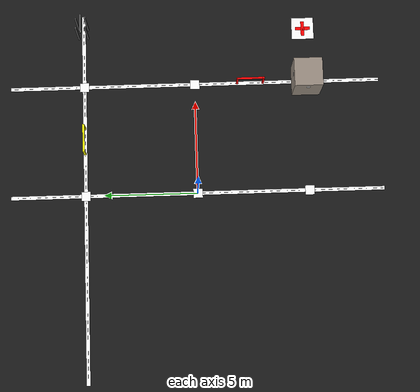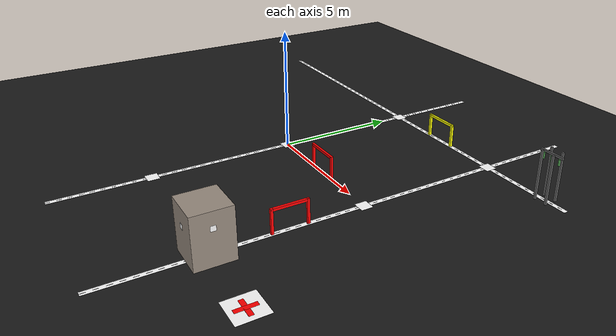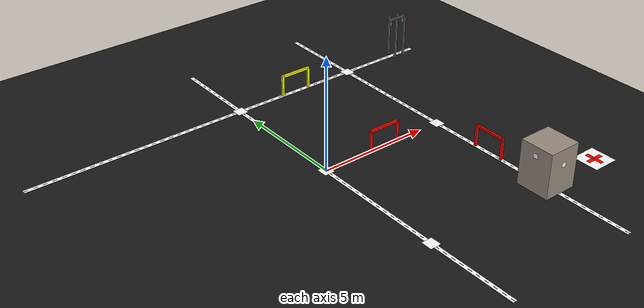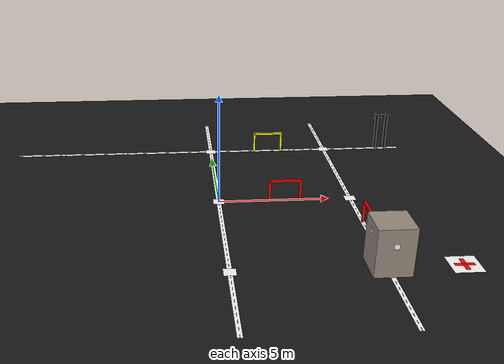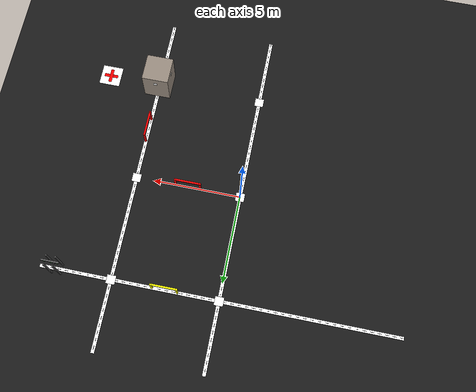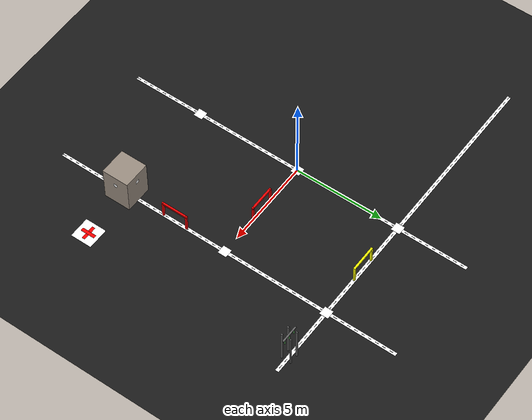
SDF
<sdf version="1.7">
 <world name="fira_arena">
  <model name="ground_plane">
   <static>true</static>
   <link name="link">
    <collision name="collision">
     <geometry><plane><normal>0 0 1</normal><size>30 30</size></plane></geometry>
    </collision>
    <visual name="visual">
     <geometry><plane><normal>0 0 1</normal><size>30 30</size></plane></geometry>
     <material>
      <ambient>0.1 0.1 0.1 1</ambient>
      <diffuse>0.1 0.1 0.1 1</diffuse>
      <specular>0.1 0.1 0.1 1</specular>
     </material>
    </visual>
   </link>
  </model>
  <model name="street_h_top">
   <static>true</static>
   <pose>0 6 0.001 0 0 0</pose>
   <link name="link">
    <visual name="road">
     <geometry><box><size>20.0 0.2 0.002</size></box></geometry>
     <material><ambient>1 1 1 1</ambient><diffuse>1 1 1 1</diffuse></material>
    </visual>
    <visual name="l0">
     <pose>-9.90 0 0.001 0 0 0</pose>
     <geometry><box><size>0.2 0.02 0.001</size></box></geometry>
     <material><ambient>0 0 0 1</ambient><diffuse>0 0 0 1</diffuse></material>
    </visual>
    <visual name="l1">
     <pose>-9.50 0 0.001 0 0 0</pose>
     <geometry><box><size>0.2 0.02 0.001</size></box></geometry>
     <material><ambient>0 0 0 1</ambient><diffuse>0 0 0 1</diffuse></material>
    </visual>
    <visual name="l2">
     <pose>-9.10 0 0.001 0 0 0</pose>
     <geometry><box><size>0.2 0.02 0.001</size></box></geometry>
     <material><ambient>0 0 0 1</ambient><diffuse>0 0 0 1</diffuse></material>
    </visual>
    <visual name="l3">
     <pose>-8.70 0 0.001 0 0 0</pose>
     <geometry><box><size>0.2 0.02 0.001</size></box></geometry>
     <material><ambient>0 0 0 1</ambient><diffuse>0 0 0 1</diffuse></material>
    </visual>
    <visual name="l4">
     <pose>-8.30 0 0.001 0 0 0</pose>
     <geometry><box><size>0.2 0.02 0.001</size></box></geometry>
     <material><ambient>0 0 0 1</ambient><diffuse>0 0 0 1</diffuse></material>
    </visual>
    <visual name="l5">
     <pose>-7.90 0 0.001 0 0 0</pose>
     <geometry><box><size>0.2 0.02 0.001</size></box></geometry>
     <material><ambient>0 0 0 1</ambient><diffuse>0 0 0 1</diffuse></material>
    </visual>
    <visual name="l6">
     <pose>-7.50 0 0.001 0 0 0</pose>
     <geometry><box><size>0.2 0.02 0.001</size></box></geometry>
     <material><ambient>0 0 0 1</ambient><diffuse>0 0 0 1</diffuse></material>
    </visual>
    <visual name="l7">
     <pose>-7.10 0 0.001 0 0 0</pose>
     <geometry><box><size>0.2 0.02 0.001</size></box></geometry>
     <material><ambient>0 0 0 1</ambient><diffuse>0 0 0 1</diffuse></material>
    </visual>
    <visual name="l8">
     <pose>-6.70 0 0.001 0 0 0</pose>
     <geometry><box><size>0.2 0.02 0.001</size></box></geometry>
     <material><ambient>0 0 0 1</ambient><diffuse>0 0 0 1</diffuse></material>
    </visual>
    <visual name="l9">
     <pose>-6.30 0 0.001 0 0 0</pose>
     <geometry><box><size>0.2 0.02 0.001</size></box></geometry>
     <material><ambient>0 0 0 1</ambient><diffuse>0 0 0 1</diffuse></material>
    </visual>
    <visual name="l10">
     <pose>-5.90 0 0.001 0 0 0</pose>
     <geometry><box><size>0.2 0.02 0.001</size></box></geometry>
     <material><ambient>0 0 0 1</ambient><diffuse>0 0 0 1</diffuse></material>
    </visual>
    <visual name="l11">
     <pose>-5.50 0 0.001 0 0 0</pose>
     <geometry><box><size>0.2 0.02 0.001</size></box></geometry>
     <material><ambient>0 0 0 1</ambient><diffuse>0 0 0 1</diffuse></material>
    </visual>
    <visual name="l12">
     <pose>-5.10 0 0.001 0 0 0</pose>
     <geometry><box><size>0.2 0.02 0.001</size></box></geometry>
     <material><ambient>0 0 0 1</ambient><diffuse>0 0 0 1</diffuse></material>
    </visual>
    <visual name="l13">
     <pose>-4.70 0 0.001 0 0 0</pose>
     <geometry><box><size>0.2 0.02 0.001</size></box></geometry>
     <material><ambient>0 0 0 1</ambient><diffuse>0 0 0 1</diffuse></material>
    </visual>
    <visual name="l14">
     <pose>-4.30 0 0.001 0 0 0</pose>
     <geometry><box><size>0.2 0.02 0.001</size></box></geometry>
     <material><ambient>0 0 0 1</ambient><diffuse>0 0 0 1</diffuse></material>
    </visual>
    <visual name="l15">
     <pose>-3.90 0 0.001 0 0 0</pose>
     <geometry><box><size>0.2 0.02 0.001</size></box></geometry>
     <material><ambient>0 0 0 1</ambient><diffuse>0 0 0 1</diffuse></material>
    </visual>
    <visual name="l16">
     <pose>-3.50 0 0.001 0 0 0</pose>
     <geometry><box><size>0.2 0.02 0.001</size></box></geometry>
     <material><ambient>0 0 0 1</ambient><diffuse>0 0 0 1</diffuse></material>
    </visual>
    <visual name="l17">
     <pose>-3.10 0 0.001 0 0 0</pose>
     <geometry><box><size>0.2 0.02 0.001</size></box></geometry>
     <material><ambient>0 0 0 1</ambient><diffuse>0 0 0 1</diffuse></material>
    </visual>
    <visual name="l18">
     <pose>-2.70 0 0.001 0 0 0</pose>
     <geometry><box><size>0.2 0.02 0.001</size></box></geometry>
     <material><ambient>0 0 0 1</ambient><diffuse>0 0 0 1</diffuse></material>
    </visual>
    <visual name="l19">
     <pose>-2.30 0 0.001 0 0 0</pose>
     <geometry><box><size>0.2 0.02 0.001</size></box></geometry>
     <material><ambient>0 0 0 1</ambient><diffuse>0 0 0 1</diffuse></material>
    </visual>
    <visual name="l20">
     <pose>-1.90 0 0.001 0 0 0</pose>
     <geometry><box><size>0.2 0.02 0.001</size></box></geometry>
     <material><ambient>0 0 0 1</ambient><diffuse>0 0 0 1</diffuse></material>
    </visual>
    <visual name="l21">
     <pose>-1.50 0 0.001 0 0 0</pose>
     <geometry><box><size>0.2 0.02 0.001</size></box></geometry>
     <material><ambient>0 0 0 1</ambient><diffuse>0 0 0 1</diffuse></material>
    </visual>
    <visual name="l22">
     <pose>-1.10 0 0.001 0 0 0</pose>
     <geometry><box><size>0.2 0.02 0.001</size></box></geometry>
     <material><ambient>0 0 0 1</ambient><diffuse>0 0 0 1</diffuse></material>
    </visual>
    <visual name="l23">
     <pose>-0.70 0 0.001 0 0 0</pose>
     <geometry><box><size>0.2 0.02 0.001</size></box></geometry>
     <material><ambient>0 0 0 1</ambient><diffuse>0 0 0 1</diffuse></material>
    </visual>
    <visual name="l24">
     <pose>-0.30 0 0.001 0 0 0</pose>
     <geometry><box><size>0.2 0.02 0.001</size></box></geometry>
     <material><ambient>0 0 0 1</ambient><diffuse>0 0 0 1</diffuse></material>
    </visual>
    <visual name="l25">
     <pose>0.10 0 0.001 0 0 0</pose>
     <geometry><box><size>0.2 0.02 0.001</size></box></geometry>
     <material><ambient>0 0 0 1</ambient><diffuse>0 0 0 1</diffuse></material>
    </visual>
    <visual name="l26">
     <pose>0.50 0 0.001 0 0 0</pose>
     <geometry><box><size>0.2 0.02 0.001</size></box></geometry>
     <material><ambient>0 0 0 1</ambient><diffuse>0 0 0 1</diffuse></material>
    </visual>
    <visual name="l27">
     <pose>0.90 0 0.001 0 0 0</pose>
     <geometry><box><size>0.2 0.02 0.001</size></box></geometry>
     <material><ambient>0 0 0 1</ambient><diffuse>0 0 0 1</diffuse></material>
    </visual>
    <visual name="l28">
     <pose>1.30 0 0.001 0 0 0</pose>
     <geometry><box><size>0.2 0.02 0.001</size></box></geometry>
     <material><ambient>0 0 0 1</ambient><diffuse>0 0 0 1</diffuse></material>
    </visual>
    <visual name="l29">
     <pose>1.70 0 0.001 0 0 0</pose>
     <geometry><box><size>0.2 0.02 0.001</size></box></geometry>
     <material><ambient>0 0 0 1</ambient><diffuse>0 0 0 1</diffuse></material>
    </visual>
    <visual name="l30">
     <pose>2.10 0 0.001 0 0 0</pose>
     <geometry><box><size>0.2 0.02 0.001</size></box></geometry>
     <material><ambient>0 0 0 1</ambient><diffuse>0 0 0 1</diffuse></material>
    </visual>
    <visual name="l31">
     <pose>2.50 0 0.001 0 0 0</pose>
     <geometry><box><size>0.2 0.02 0.001</size></box></geometry>
     <material><ambient>0 0 0 1</ambient><diffuse>0 0 0 1</diffuse></material>
    </visual>
    <visual name="l32">
     <pose>2.90 0 0.001 0 0 0</pose>
     <geometry><box><size>0.2 0.02 0.001</size></box></geometry>
     <material><ambient>0 0 0 1</ambient><diffuse>0 0 0 1</diffuse></material>
    </visual>
    <visual name="l33">
     <pose>3.30 0 0.001 0 0 0</pose>
     <geometry><box><size>0.2 0.02 0.001</size></box></geometry>
     <material><ambient>0 0 0 1</ambient><diffuse>0 0 0 1</diffuse></material>
    </visual>
    <visual name="l34">
     <pose>3.70 0 0.001 0 0 0</pose>
     <geometry><box><size>0.2 0.02 0.001</size></box></geometry>
     <material><ambient>0 0 0 1</ambient><diffuse>0 0 0 1</diffuse></material>
    </visual>
    <visual name="l35">
     <pose>4.10 0 0.001 0 0 0</pose>
     <geometry><box><size>0.2 0.02 0.001</size></box></geometry>
     <material><ambient>0 0 0 1</ambient><diffuse>0 0 0 1</diffuse></material>
    </visual>
    <visual name="l36">
     <pose>4.50 0 0.001 0 0 0</pose>
     <geometry><box><size>0.2 0.02 0.001</size></box></geometry>
     <material><ambient>0 0 0 1</ambient><diffuse>0 0 0 1</diffuse></material>
    </visual>
    <visual name="l37">
     <pose>4.90 0 0.001 0 0 0</pose>
     <geometry><box><size>0.2 0.02 0.001</size></box></geometry>
     <material><ambient>0 0 0 1</ambient><diffuse>0 0 0 1</diffuse></material>
    </visual>
    <visual name="l38">
     <pose>5.30 0 0.001 0 0 0</pose>
     <geometry><box><size>0.2 0.02 0.001</size></box></geometry>
     <material><ambient>0 0 0 1</ambient><diffuse>0 0 0 1</diffuse></material>
    </visual>
    <visual name="l39">
     <pose>5.70 0 0.001 0 0 0</pose>
     <geometry><box><size>0.2 0.02 0.001</size></box></geometry>
     <material><ambient>0 0 0 1</ambient><diffuse>0 0 0 1</diffuse></material>
    </visual>
    <visual name="l40">
     <pose>6.10 0 0.001 0 0 0</pose>
     <geometry><box><size>0.2 0.02 0.001</size></box></geometry>
     <material><ambient>0 0 0 1</ambient><diffuse>0 0 0 1</diffuse></material>
    </visual>
    <visual name="l41">
     <pose>6.50 0 0.001 0 0 0</pose>
     <geometry><box><size>0.2 0.02 0.001</size></box></geometry>
     <material><ambient>0 0 0 1</ambient><diffuse>0 0 0 1</diffuse></material>
    </visual>
    <visual name="l42">
     <pose>6.90 0 0.001 0 0 0</pose>
     <geometry><box><size>0.2 0.02 0.001</size></box></geometry>
     <material><ambient>0 0 0 1</ambient><diffuse>0 0 0 1</diffuse></material>
    </visual>
    <visual name="l43">
     <pose>7.30 0 0.001 0 0 0</pose>
     <geometry><box><size>0.2 0.02 0.001</size></box></geometry>
     <material><ambient>0 0 0 1</ambient><diffuse>0 0 0 1</diffuse></material>
    </visual>
    <visual name="l44">
     <pose>7.70 0 0.001 0 0 0</pose>
     <geometry><box><size>0.2 0.02 0.001</size></box></geometry>
     <material><ambient>0 0 0 1</ambient><diffuse>0 0 0 1</diffuse></material>
    </visual>
    <visual name="l45">
     <pose>8.10 0 0.001 0 0 0</pose>
     <geometry><box><size>0.2 0.02 0.001</size></box></geometry>
     <material><ambient>0 0 0 1</ambient><diffuse>0 0 0 1</diffuse></material>
    </visual>
    <visual name="l46">
     <pose>8.50 0 0.001 0 0 0</pose>
     <geometry><box><size>0.2 0.02 0.001</size></box></geometry>
     <material><ambient>0 0 0 1</ambient><diffuse>0 0 0 1</diffuse></material>
    </visual>
    <visual name="l47">
     <pose>8.90 0 0.001 0 0 0</pose>
     <geometry><box><size>0.2 0.02 0.001</size></box></geometry>
     <material><ambient>0 0 0 1</ambient><diffuse>0 0 0 1</diffuse></material>
    </visual>
    <visual name="l48">
     <pose>9.30 0 0.001 0 0 0</pose>
     <geometry><box><size>0.2 0.02 0.001</size></box></geometry>
     <material><ambient>0 0 0 1</ambient><diffuse>0 0 0 1</diffuse></material>
    </visual>
    <visual name="l49">
     <pose>9.70 0 0.001 0 0 0</pose>
     <geometry><box><size>0.2 0.02 0.001</size></box></geometry>
     <material><ambient>0 0 0 1</ambient><diffuse>0 0 0 1</diffuse></material>
    </visual>
   </link>
  </model>
  <model name="street_v_center">
   <static>true</static>
   <pose>0 0 0.001 0 0 0</pose>
   <link name="link">
    <visual name="road">
     <geometry><box><size>0.2 20.0 0.002</size></box></geometry>
     <material><ambient>1 1 1 1</ambient><diffuse>1 1 1 1</diffuse></material>
    </visual>
    <visual name="l0">
     <pose>0 -9.90 0.001 0 0 0</pose>
     <geometry><box><size>0.02 0.2 0.001</size></box></geometry>
     <material><ambient>0 0 0 1</ambient><diffuse>0 0 0 1</diffuse></material>
    </visual>
    <visual name="l1">
     <pose>0 -9.50 0.001 0 0 0</pose>
     <geometry><box><size>0.02 0.2 0.001</size></box></geometry>
     <material><ambient>0 0 0 1</ambient><diffuse>0 0 0 1</diffuse></material>
    </visual>
    <visual name="l2">
     <pose>0 -9.10 0.001 0 0 0</pose>
     <geometry><box><size>0.02 0.2 0.001</size></box></geometry>
     <material><ambient>0 0 0 1</ambient><diffuse>0 0 0 1</diffuse></material>
    </visual>
    <visual name="l3">
     <pose>0 -8.70 0.001 0 0 0</pose>
     <geometry><box><size>0.02 0.2 0.001</size></box></geometry>
     <material><ambient>0 0 0 1</ambient><diffuse>0 0 0 1</diffuse></material>
    </visual>
    <visual name="l4">
     <pose>0 -8.30 0.001 0 0 0</pose>
     <geometry><box><size>0.02 0.2 0.001</size></box></geometry>
     <material><ambient>0 0 0 1</ambient><diffuse>0 0 0 1</diffuse></material>
    </visual>
    <visual name="l5">
     <pose>0 -7.90 0.001 0 0 0</pose>
     <geometry><box><size>0.02 0.2 0.001</size></box></geometry>
     <material><ambient>0 0 0 1</ambient><diffuse>0 0 0 1</diffuse></material>
    </visual>
    <visual name="l6">
     <pose>0 -7.50 0.001 0 0 0</pose>
     <geometry><box><size>0.02 0.2 0.001</size></box></geometry>
     <material><ambient>0 0 0 1</ambient><diffuse>0 0 0 1</diffuse></material>
    </visual>
    <visual name="l7">
     <pose>0 -7.10 0.001 0 0 0</pose>
     <geometry><box><size>0.02 0.2 0.001</size></box></geometry>
     <material><ambient>0 0 0 1</ambient><diffuse>0 0 0 1</diffuse></material>
    </visual>
    <visual name="l8">
     <pose>0 -6.70 0.001 0 0 0</pose>
     <geometry><box><size>0.02 0.2 0.001</size></box></geometry>
     <material><ambient>0 0 0 1</ambient><diffuse>0 0 0 1</diffuse></material>
    </visual>
    <visual name="l9">
     <pose>0 -6.30 0.001 0 0 0</pose>
     <geometry><box><size>0.02 0.2 0.001</size></box></geometry>
     <material><ambient>0 0 0 1</ambient><diffuse>0 0 0 1</diffuse></material>
    </visual>
    <visual name="l10">
     <pose>0 -5.90 0.001 0 0 0</pose>
     <geometry><box><size>0.02 0.2 0.001</size></box></geometry>
     <material><ambient>0 0 0 1</ambient><diffuse>0 0 0 1</diffuse></material>
    </visual>
    <visual name="l11">
     <pose>0 -5.50 0.001 0 0 0</pose>
     <geometry><box><size>0.02 0.2 0.001</size></box></geometry>
     <material><ambient>0 0 0 1</ambient><diffuse>0 0 0 1</diffuse></material>
    </visual>
    <visual name="l12">
     <pose>0 -5.10 0.001 0 0 0</pose>
     <geometry><box><size>0.02 0.2 0.001</size></box></geometry>
     <material><ambient>0 0 0 1</ambient><diffuse>0 0 0 1</diffuse></material>
    </visual>
    <visual name="l13">
     <pose>0 -4.70 0.001 0 0 0</pose>
     <geometry><box><size>0.02 0.2 0.001</size></box></geometry>
     <material><ambient>0 0 0 1</ambient><diffuse>0 0 0 1</diffuse></material>
    </visual>
    <visual name="l14">
     <pose>0 -4.30 0.001 0 0 0</pose>
     <geometry><box><size>0.02 0.2 0.001</size></box></geometry>
     <material><ambient>0 0 0 1</ambient><diffuse>0 0 0 1</diffuse></material>
    </visual>
    <visual name="l15">
     <pose>0 -3.90 0.001 0 0 0</pose>
     <geometry><box><size>0.02 0.2 0.001</size></box></geometry>
     <material><ambient>0 0 0 1</ambient><diffuse>0 0 0 1</diffuse></material>
    </visual>
    <visual name="l16">
     <pose>0 -3.50 0.001 0 0 0</pose>
     <geometry><box><size>0.02 0.2 0.001</size></box></geometry>
     <material><ambient>0 0 0 1</ambient><diffuse>0 0 0 1</diffuse></material>
    </visual>
    <visual name="l17">
     <pose>0 -3.10 0.001 0 0 0</pose>
     <geometry><box><size>0.02 0.2 0.001</size></box></geometry>
     <material><ambient>0 0 0 1</ambient><diffuse>0 0 0 1</diffuse></material>
    </visual>
    <visual name="l18">
     <pose>0 -2.70 0.001 0 0 0</pose>
     <geometry><box><size>0.02 0.2 0.001</size></box></geometry>
     <material><ambient>0 0 0 1</ambient><diffuse>0 0 0 1</diffuse></material>
    </visual>
    <visual name="l19">
     <pose>0 -2.30 0.001 0 0 0</pose>
     <geometry><box><size>0.02 0.2 0.001</size></box></geometry>
     <material><ambient>0 0 0 1</ambient><diffuse>0 0 0 1</diffuse></material>
    </visual>
    <visual name="l20">
     <pose>0 -1.90 0.001 0 0 0</pose>
     <geometry><box><size>0.02 0.2 0.001</size></box></geometry>
     <material><ambient>0 0 0 1</ambient><diffuse>0 0 0 1</diffuse></material>
    </visual>
    <visual name="l21">
     <pose>0 -1.50 0.001 0 0 0</pose>
     <geometry><box><size>0.02 0.2 0.001</size></box></geometry>
     <material><ambient>0 0 0 1</ambient><diffuse>0 0 0 1</diffuse></material>
    </visual>
    <visual name="l22">
     <pose>0 -1.10 0.001 0 0 0</pose>
     <geometry><box><size>0.02 0.2 0.001</size></box></geometry>
     <material><ambient>0 0 0 1</ambient><diffuse>0 0 0 1</diffuse></material>
    </visual>
    <visual name="l23">
     <pose>0 -0.70 0.001 0 0 0</pose>
     <geometry><box><size>0.02 0.2 0.001</size></box></geometry>
     <material><ambient>0 0 0 1</ambient><diffuse>0 0 0 1</diffuse></material>
    </visual>
    <visual name="l24">
     <pose>0 -0.30 0.001 0 0 0</pose>
     <geometry><box><size>0.02 0.2 0.001</size></box></geometry>
     <material><ambient>0 0 0 1</ambient><diffuse>0 0 0 1</diffuse></material>
    </visual>
    <visual name="l25">
     <pose>0 0.10 0.001 0 0 0</pose>
     <geometry><box><size>0.02 0.2 0.001</size></box></geometry>
     <material><ambient>0 0 0 1</ambient><diffuse>0 0 0 1</diffuse></material>
    </visual>
    <visual name="l26">
     <pose>0 0.50 0.001 0 0 0</pose>
     <geometry><box><size>0.02 0.2 0.001</size></box></geometry>
     <material><ambient>0 0 0 1</ambient><diffuse>0 0 0 1</diffuse></material>
    </visual>
    <visual name="l27">
     <pose>0 0.90 0.001 0 0 0</pose>
     <geometry><box><size>0.02 0.2 0.001</size></box></geometry>
     <material><ambient>0 0 0 1</ambient><diffuse>0 0 0 1</diffuse></material>
    </visual>
    <visual name="l28">
     <pose>0 1.30 0.001 0 0 0</pose>
     <geometry><box><size>0.02 0.2 0.001</size></box></geometry>
     <material><ambient>0 0 0 1</ambient><diffuse>0 0 0 1</diffuse></material>
    </visual>
    <visual name="l29">
     <pose>0 1.70 0.001 0 0 0</pose>
     <geometry><box><size>0.02 0.2 0.001</size></box></geometry>
     <material><ambient>0 0 0 1</ambient><diffuse>0 0 0 1</diffuse></material>
    </visual>
    <visual name="l30">
     <pose>0 2.10 0.001 0 0 0</pose>
     <geometry><box><size>0.02 0.2 0.001</size></box></geometry>
     <material><ambient>0 0 0 1</ambient><diffuse>0 0 0 1</diffuse></material>
    </visual>
    <visual name="l31">
     <pose>0 2.50 0.001 0 0 0</pose>
     <geometry><box><size>0.02 0.2 0.001</size></box></geometry>
     <material><ambient>0 0 0 1</ambient><diffuse>0 0 0 1</diffuse></material>
    </visual>
    <visual name="l32">
     <pose>0 2.90 0.001 0 0 0</pose>
     <geometry><box><size>0.02 0.2 0.001</size></box></geometry>
     <material><ambient>0 0 0 1</ambient><diffuse>0 0 0 1</diffuse></material>
    </visual>
    <visual name="l33">
     <pose>0 3.30 0.001 0 0 0</pose>
     <geometry><box><size>0.02 0.2 0.001</size></box></geometry>
     <material><ambient>0 0 0 1</ambient><diffuse>0 0 0 1</diffuse></material>
    </visual>
    <visual name="l34">
     <pose>0 3.70 0.001 0 0 0</pose>
     <geometry><box><size>0.02 0.2 0.001</size></box></geometry>
     <material><ambient>0 0 0 1</ambient><diffuse>0 0 0 1</diffuse></material>
    </visual>
    <visual name="l35">
     <pose>0 4.10 0.001 0 0 0</pose>
     <geometry><box><size>0.02 0.2 0.001</size></box></geometry>
     <material><ambient>0 0 0 1</ambient><diffuse>0 0 0 1</diffuse></material>
    </visual>
    <visual name="l36">
     <pose>0 4.50 0.001 0 0 0</pose>
     <geometry><box><size>0.02 0.2 0.001</size></box></geometry>
     <material><ambient>0 0 0 1</ambient><diffuse>0 0 0 1</diffuse></material>
    </visual>
    <visual name="l37">
     <pose>0 4.90 0.001 0 0 0</pose>
     <geometry><box><size>0.02 0.2 0.001</size></box></geometry>
     <material><ambient>0 0 0 1</ambient><diffuse>0 0 0 1</diffuse></material>
    </visual>
    <visual name="l38">
     <pose>0 5.30 0.001 0 0 0</pose>
     <geometry><box><size>0.02 0.2 0.001</size></box></geometry>
     <material><ambient>0 0 0 1</ambient><diffuse>0 0 0 1</diffuse></material>
    </visual>
    <visual name="l39">
     <pose>0 5.70 0.001 0 0 0</pose>
     <geometry><box><size>0.02 0.2 0.001</size></box></geometry>
     <material><ambient>0 0 0 1</ambient><diffuse>0 0 0 1</diffuse></material>
    </visual>
    <visual name="l40">
     <pose>0 6.10 0.001 0 0 0</pose>
     <geometry><box><size>0.02 0.2 0.001</size></box></geometry>
     <material><ambient>0 0 0 1</ambient><diffuse>0 0 0 1</diffuse></material>
    </visual>
    <visual name="l41">
     <pose>0 6.50 0.001 0 0 0</pose>
     <geometry><box><size>0.02 0.2 0.001</size></box></geometry>
     <material><ambient>0 0 0 1</ambient><diffuse>0 0 0 1</diffuse></material>
    </visual>
    <visual name="l42">
     <pose>0 6.90 0.001 0 0 0</pose>
     <geometry><box><size>0.02 0.2 0.001</size></box></geometry>
     <material><ambient>0 0 0 1</ambient><diffuse>0 0 0 1</diffuse></material>
    </visual>
    <visual name="l43">
     <pose>0 7.30 0.001 0 0 0</pose>
     <geometry><box><size>0.02 0.2 0.001</size></box></geometry>
     <material><ambient>0 0 0 1</ambient><diffuse>0 0 0 1</diffuse></material>
    </visual>
    <visual name="l44">
     <pose>0 7.70 0.001 0 0 0</pose>
     <geometry><box><size>0.02 0.2 0.001</size></box></geometry>
     <material><ambient>0 0 0 1</ambient><diffuse>0 0 0 1</diffuse></material>
    </visual>
    <visual name="l45">
     <pose>0 8.10 0.001 0 0 0</pose>
     <geometry><box><size>0.02 0.2 0.001</size></box></geometry>
     <material><ambient>0 0 0 1</ambient><diffuse>0 0 0 1</diffuse></material>
    </visual>
    <visual name="l46">
     <pose>0 8.50 0.001 0 0 0</pose>
     <geometry><box><size>0.02 0.2 0.001</size></box></geometry>
     <material><ambient>0 0 0 1</ambient><diffuse>0 0 0 1</diffuse></material>
    </visual>
    <visual name="l47">
     <pose>0 8.90 0.001 0 0 0</pose>
     <geometry><box><size>0.02 0.2 0.001</size></box></geometry>
     <material><ambient>0 0 0 1</ambient><diffuse>0 0 0 1</diffuse></material>
    </visual>
    <visual name="l48">
     <pose>0 9.30 0.001 0 0 0</pose>
     <geometry><box><size>0.02 0.2 0.001</size></box></geometry>
     <material><ambient>0 0 0 1</ambient><diffuse>0 0 0 1</diffuse></material>
    </visual>
    <visual name="l49">
     <pose>0 9.70 0.001 0 0 0</pose>
     <geometry><box><size>0.02 0.2 0.001</size></box></geometry>
     <material><ambient>0 0 0 1</ambient><diffuse>0 0 0 1</diffuse></material>
    </visual>
   </link>
  </model>
  <model name="street_v_right">
   <static>true</static>
   <pose>6 0 0.001 0 0 0</pose>
   <link name="link">
    <visual name="road">
     <geometry><box><size>0.2 20.0 0.002</size></box></geometry>
     <material><ambient>1 1 1 1</ambient><diffuse>1 1 1 1</diffuse></material>
    </visual>
    <visual name="l0">
     <pose>0 -9.90 0.001 0 0 0</pose>
     <geometry><box><size>0.02 0.2 0.001</size></box></geometry>
     <material><ambient>0 0 0 1</ambient><diffuse>0 0 0 1</diffuse></material>
    </visual>
    <visual name="l1">
     <pose>0 -9.50 0.001 0 0 0</pose>
     <geometry><box><size>0.02 0.2 0.001</size></box></geometry>
     <material><ambient>0 0 0 1</ambient><diffuse>0 0 0 1</diffuse></material>
    </visual>
    <visual name="l2">
     <pose>0 -9.10 0.001 0 0 0</pose>
     <geometry><box><size>0.02 0.2 0.001</size></box></geometry>
     <material><ambient>0 0 0 1</ambient><diffuse>0 0 0 1</diffuse></material>
    </visual>
    <visual name="l3">
     <pose>0 -8.70 0.001 0 0 0</pose>
     <geometry><box><size>0.02 0.2 0.001</size></box></geometry>
     <material><ambient>0 0 0 1</ambient><diffuse>0 0 0 1</diffuse></material>
    </visual>
    <visual name="l4">
     <pose>0 -8.30 0.001 0 0 0</pose>
     <geometry><box><size>0.02 0.2 0.001</size></box></geometry>
     <material><ambient>0 0 0 1</ambient><diffuse>0 0 0 1</diffuse></material>
    </visual>
    <visual name="l5">
     <pose>0 -7.90 0.001 0 0 0</pose>
     <geometry><box><size>0.02 0.2 0.001</size></box></geometry>
     <material><ambient>0 0 0 1</ambient><diffuse>0 0 0 1</diffuse></material>
    </visual>
    <visual name="l6">
     <pose>0 -7.50 0.001 0 0 0</pose>
     <geometry><box><size>0.02 0.2 0.001</size></box></geometry>
     <material><ambient>0 0 0 1</ambient><diffuse>0 0 0 1</diffuse></material>
    </visual>
    <visual name="l7">
     <pose>0 -7.10 0.001 0 0 0</pose>
     <geometry><box><size>0.02 0.2 0.001</size></box></geometry>
     <material><ambient>0 0 0 1</ambient><diffuse>0 0 0 1</diffuse></material>
    </visual>
    <visual name="l8">
     <pose>0 -6.70 0.001 0 0 0</pose>
     <geometry><box><size>0.02 0.2 0.001</size></box></geometry>
     <material><ambient>0 0 0 1</ambient><diffuse>0 0 0 1</diffuse></material>
    </visual>
    <visual name="l9">
     <pose>0 -6.30 0.001 0 0 0</pose>
     <geometry><box><size>0.02 0.2 0.001</size></box></geometry>
     <material><ambient>0 0 0 1</ambient><diffuse>0 0 0 1</diffuse></material>
    </visual>
    <visual name="l10">
     <pose>0 -5.90 0.001 0 0 0</pose>
     <geometry><box><size>0.02 0.2 0.001</size></box></geometry>
     <material><ambient>0 0 0 1</ambient><diffuse>0 0 0 1</diffuse></material>
    </visual>
    <visual name="l11">
     <pose>0 -5.50 0.001 0 0 0</pose>
     <geometry><box><size>0.02 0.2 0.001</size></box></geometry>
     <material><ambient>0 0 0 1</ambient><diffuse>0 0 0 1</diffuse></material>
    </visual>
    <visual name="l12">
     <pose>0 -5.10 0.001 0 0 0</pose>
     <geometry><box><size>0.02 0.2 0.001</size></box></geometry>
     <material><ambient>0 0 0 1</ambient><diffuse>0 0 0 1</diffuse></material>
    </visual>
    <visual name="l13">
     <pose>0 -4.70 0.001 0 0 0</pose>
     <geometry><box><size>0.02 0.2 0.001</size></box></geometry>
     <material><ambient>0 0 0 1</ambient><diffuse>0 0 0 1</diffuse></material>
    </visual>
    <visual name="l14">
     <pose>0 -4.30 0.001 0 0 0</pose>
     <geometry><box><size>0.02 0.2 0.001</size></box></geometry>
     <material><ambient>0 0 0 1</ambient><diffuse>0 0 0 1</diffuse></material>
    </visual>
    <visual name="l15">
     <pose>0 -3.90 0.001 0 0 0</pose>
     <geometry><box><size>0.02 0.2 0.001</size></box></geometry>
     <material><ambient>0 0 0 1</ambient><diffuse>0 0 0 1</diffuse></material>
    </visual>
    <visual name="l16">
     <pose>0 -3.50 0.001 0 0 0</pose>
     <geometry><box><size>0.02 0.2 0.001</size></box></geometry>
     <material><ambient>0 0 0 1</ambient><diffuse>0 0 0 1</diffuse></material>
    </visual>
    <visual name="l17">
     <pose>0 -3.10 0.001 0 0 0</pose>
     <geometry><box><size>0.02 0.2 0.001</size></box></geometry>
     <material><ambient>0 0 0 1</ambient><diffuse>0 0 0 1</diffuse></material>
    </visual>
    <visual name="l18">
     <pose>0 -2.70 0.001 0 0 0</pose>
     <geometry><box><size>0.02 0.2 0.001</size></box></geometry>
     <material><ambient>0 0 0 1</ambient><diffuse>0 0 0 1</diffuse></material>
    </visual>
    <visual name="l19">
     <pose>0 -2.30 0.001 0 0 0</pose>
     <geometry><box><size>0.02 0.2 0.001</size></box></geometry>
     <material><ambient>0 0 0 1</ambient><diffuse>0 0 0 1</diffuse></material>
    </visual>
    <visual name="l20">
     <pose>0 -1.90 0.001 0 0 0</pose>
     <geometry><box><size>0.02 0.2 0.001</size></box></geometry>
     <material><ambient>0 0 0 1</ambient><diffuse>0 0 0 1</diffuse></material>
    </visual>
    <visual name="l21">
     <pose>0 -1.50 0.001 0 0 0</pose>
     <geometry><box><size>0.02 0.2 0.001</size></box></geometry>
     <material><ambient>0 0 0 1</ambient><diffuse>0 0 0 1</diffuse></material>
    </visual>
    <visual name="l22">
     <pose>0 -1.10 0.001 0 0 0</pose>
     <geometry><box><size>0.02 0.2 0.001</size></box></geometry>
     <material><ambient>0 0 0 1</ambient><diffuse>0 0 0 1</diffuse></material>
    </visual>
    <visual name="l23">
     <pose>0 -0.70 0.001 0 0 0</pose>
     <geometry><box><size>0.02 0.2 0.001</size></box></geometry>
     <material><ambient>0 0 0 1</ambient><diffuse>0 0 0 1</diffuse></material>
    </visual>
    <visual name="l24">
     <pose>0 -0.30 0.001 0 0 0</pose>
     <geometry><box><size>0.02 0.2 0.001</size></box></geometry>
     <material><ambient>0 0 0 1</ambient><diffuse>0 0 0 1</diffuse></material>
    </visual>
    <visual name="l25">
     <pose>0 0.10 0.001 0 0 0</pose>
     <geometry><box><size>0.02 0.2 0.001</size></box></geometry>
     <material><ambient>0 0 0 1</ambient><diffuse>0 0 0 1</diffuse></material>
    </visual>
    <visual name="l26">
     <pose>0 0.50 0.001 0 0 0</pose>
     <geometry><box><size>0.02 0.2 0.001</size></box></geometry>
     <material><ambient>0 0 0 1</ambient><diffuse>0 0 0 1</diffuse></material>
    </visual>
    <visual name="l27">
     <pose>0 0.90 0.001 0 0 0</pose>
     <geometry><box><size>0.02 0.2 0.001</size></box></geometry>
     <material><ambient>0 0 0 1</ambient><diffuse>0 0 0 1</diffuse></material>
    </visual>
    <visual name="l28">
     <pose>0 1.30 0.001 0 0 0</pose>
     <geometry><box><size>0.02 0.2 0.001</size></box></geometry>
     <material><ambient>0 0 0 1</ambient><diffuse>0 0 0 1</diffuse></material>
    </visual>
    <visual name="l29">
     <pose>0 1.70 0.001 0 0 0</pose>
     <geometry><box><size>0.02 0.2 0.001</size></box></geometry>
     <material><ambient>0 0 0 1</ambient><diffuse>0 0 0 1</diffuse></material>
    </visual>
    <visual name="l30">
     <pose>0 2.10 0.001 0 0 0</pose>
     <geometry><box><size>0.02 0.2 0.001</size></box></geometry>
     <material><ambient>0 0 0 1</ambient><diffuse>0 0 0 1</diffuse></material>
    </visual>
    <visual name="l31">
     <pose>0 2.50 0.001 0 0 0</pose>
     <geometry><box><size>0.02 0.2 0.001</size></box></geometry>
     <material><ambient>0 0 0 1</ambient><diffuse>0 0 0 1</diffuse></material>
    </visual>
    <visual name="l32">
     <pose>0 2.90 0.001 0 0 0</pose>
     <geometry><box><size>0.02 0.2 0.001</size></box></geometry>
     <material><ambient>0 0 0 1</ambient><diffuse>0 0 0 1</diffuse></material>
    </visual>
    <visual name="l33">
     <pose>0 3.30 0.001 0 0 0</pose>
     <geometry><box><size>0.02 0.2 0.001</size></box></geometry>
     <material><ambient>0 0 0 1</ambient><diffuse>0 0 0 1</diffuse></material>
    </visual>
    <visual name="l34">
     <pose>0 3.70 0.001 0 0 0</pose>
     <geometry><box><size>0.02 0.2 0.001</size></box></geometry>
     <material><ambient>0 0 0 1</ambient><diffuse>0 0 0 1</diffuse></material>
    </visual>
    <visual name="l35">
     <pose>0 4.10 0.001 0 0 0</pose>
     <geometry><box><size>0.02 0.2 0.001</size></box></geometry>
     <material><ambient>0 0 0 1</ambient><diffuse>0 0 0 1</diffuse></material>
    </visual>
    <visual name="l36">
     <pose>0 4.50 0.001 0 0 0</pose>
     <geometry><box><size>0.02 0.2 0.001</size></box></geometry>
     <material><ambient>0 0 0 1</ambient><diffuse>0 0 0 1</diffuse></material>
    </visual>
    <visual name="l37">
     <pose>0 4.90 0.001 0 0 0</pose>
     <geometry><box><size>0.02 0.2 0.001</size></box></geometry>
     <material><ambient>0 0 0 1</ambient><diffuse>0 0 0 1</diffuse></material>
    </visual>
    <visual name="l38">
     <pose>0 5.30 0.001 0 0 0</pose>
     <geometry><box><size>0.02 0.2 0.001</size></box></geometry>
     <material><ambient>0 0 0 1</ambient><diffuse>0 0 0 1</diffuse></material>
    </visual>
    <visual name="l39">
     <pose>0 5.70 0.001 0 0 0</pose>
     <geometry><box><size>0.02 0.2 0.001</size></box></geometry>
     <material><ambient>0 0 0 1</ambient><diffuse>0 0 0 1</diffuse></material>
    </visual>
    <visual name="l40">
     <pose>0 6.10 0.001 0 0 0</pose>
     <geometry><box><size>0.02 0.2 0.001</size></box></geometry>
     <material><ambient>0 0 0 1</ambient><diffuse>0 0 0 1</diffuse></material>
    </visual>
    <visual name="l41">
     <pose>0 6.50 0.001 0 0 0</pose>
     <geometry><box><size>0.02 0.2 0.001</size></box></geometry>
     <material><ambient>0 0 0 1</ambient><diffuse>0 0 0 1</diffuse></material>
    </visual>
    <visual name="l42">
     <pose>0 6.90 0.001 0 0 0</pose>
     <geometry><box><size>0.02 0.2 0.001</size></box></geometry>
     <material><ambient>0 0 0 1</ambient><diffuse>0 0 0 1</diffuse></material>
    </visual>
    <visual name="l43">
     <pose>0 7.30 0.001 0 0 0</pose>
     <geometry><box><size>0.02 0.2 0.001</size></box></geometry>
     <material><ambient>0 0 0 1</ambient><diffuse>0 0 0 1</diffuse></material>
    </visual>
    <visual name="l44">
     <pose>0 7.70 0.001 0 0 0</pose>
     <geometry><box><size>0.02 0.2 0.001</size></box></geometry>
     <material><ambient>0 0 0 1</ambient><diffuse>0 0 0 1</diffuse></material>
    </visual>
    <visual name="l45">
     <pose>0 8.10 0.001 0 0 0</pose>
     <geometry><box><size>0.02 0.2 0.001</size></box></geometry>
     <material><ambient>0 0 0 1</ambient><diffuse>0 0 0 1</diffuse></material>
    </visual>
    <visual name="l46">
     <pose>0 8.50 0.001 0 0 0</pose>
     <geometry><box><size>0.02 0.2 0.001</size></box></geometry>
     <material><ambient>0 0 0 1</ambient><diffuse>0 0 0 1</diffuse></material>
    </visual>
    <visual name="l47">
     <pose>0 8.90 0.001 0 0 0</pose>
     <geometry><box><size>0.02 0.2 0.001</size></box></geometry>
     <material><ambient>0 0 0 1</ambient><diffuse>0 0 0 1</diffuse></material>
    </visual>
    <visual name="l48">
     <pose>0 9.30 0.001 0 0 0</pose>
     <geometry><box><size>0.02 0.2 0.001</size></box></geometry>
     <material><ambient>0 0 0 1</ambient><diffuse>0 0 0 1</diffuse></material>
    </visual>
    <visual name="l49">
     <pose>0 9.70 0.001 0 0 0</pose>
     <geometry><box><size>0.02 0.2 0.001</size></box></geometry>
     <material><ambient>0 0 0 1</ambient><diffuse>0 0 0 1</diffuse></material>
    </visual>
   </link>
  </model>
  <model name="delivery_marker_t1">
   <static>true</static>
   <pose>9 -6 0.005 0 0 0</pose>
   <link name="link">
    <visual name="base">
     <geometry><box><size>1.2 1.2 0.002</size></box></geometry>
     <material><ambient>1 1 1 1</ambient><diffuse>1 1 1 1</diffuse></material>
    </visual>
    <visual name="cross_v">
     <pose>0 0 0.002 0 0 0</pose>
     <geometry><box><size>0.18 0.8 0.001</size></box></geometry>
     <material><ambient>0.9 0 0 1</ambient><diffuse>1 0 0 1</diffuse></material>
    </visual>
    <visual name="cross_h">
     <pose>0 0 0.002 0 0 0</pose>
     <geometry><box><size>0.8 0.18 0.001</size></box></geometry>
     <material><ambient>0.9 0 0 1</ambient><diffuse>1 0 0 1</diffuse></material>
    </visual>
   </link>
  </model>
  <model name="tower_t2">
   <static>true</static>
   <pose>9 6 0 0 0 0</pose>
   <link name="link">
    <visual name="leg1">
     <pose>-0.25 -0.25 1 0 0 0</pose>
     <geometry><box><size>0.08 0.08 2</size></box></geometry>
     <material><ambient>0.3 0.3 0.3 1</ambient><diffuse>0.4 0.4 0.4 1</diffuse></material>
    </visual>
    <visual name="leg2">
     <pose>0.25 -0.25 1 0 0 0</pose>
     <geometry><box><size>0.08 0.08 2</size></box></geometry>
     <material><ambient>0.3 0.3 0.3 1</ambient><diffuse>0.4 0.4 0.4 1</diffuse></material>
    </visual>
    <visual name="leg3">
     <pose>-0.25 0.25 1 0 0 0</pose>
     <geometry><box><size>0.08 0.08 2</size></box></geometry>
     <material><ambient>0.3 0.3 0.3 1</ambient><diffuse>0.4 0.4 0.4 1</diffuse></material>
    </visual>
    <visual name="leg4">
     <pose>0.25 0.25 1 0 0 0</pose>
     <geometry><box><size>0.08 0.08 2</size></box></geometry>
     <material><ambient>0.3 0.3 0.3 1</ambient><diffuse>0.4 0.4 0.4 1</diffuse></material>
    </visual>
    <visual name="beam">
     <pose>0 0 1.9 0 0 0</pose>
     <geometry><box><size>1 0.08 0.08</size></box></geometry>
     <material><ambient>0.3 0.3 0.3 1</ambient><diffuse>0.4 0.4 0.4 1</diffuse></material>
    </visual>
    <visual name="ins1">
     <pose>-0.35 0 1.7 0 0 0</pose>
     <geometry><cylinder><radius>0.04</radius><length>0.25</length></cylinder></geometry>
     <material><ambient>0.2 0.5 0.2 1</ambient><diffuse>0.3 0.6 0.3 1</diffuse></material>
    </visual>
    <visual name="ins2">
     <pose>0 0 1.7 0 0 0</pose>
     <geometry><cylinder><radius>0.04</radius><length>0.25</length></cylinder></geometry>
     <material><ambient>0.2 0.5 0.2 1</ambient><diffuse>0.3 0.6 0.3 1</diffuse></material>
    </visual>
    <visual name="ins3">
     <pose>0.35 0 1.7 0 0 0</pose>
     <geometry><cylinder><radius>0.04</radius><length>0.25</length></cylinder></geometry>
     <material><ambient>0.2 0.5 0.2 1</ambient><diffuse>0.3 0.6 0.3 1</diffuse></material>
    </visual>
    <collision name="col">
     <pose>0 0 1 0 0 0</pose>
     <geometry><box><size>0.6 0.6 2</size></box></geometry>
    </collision>
   </link>
  </model>
  <model name="building_t3">
   <static>true</static>
   <pose>6 -6 1 0 0 0</pose>
   <link name="link">
    <visual name="body">
     <geometry><box><size>1.5 1.5 2</size></box></geometry>
     <material><ambient>0.5 0.45 0.4 1</ambient><diffuse>0.6 0.55 0.5 1</diffuse></material>
    </visual>
    <visual name="qr_n">
     <pose>0 0.76 0.5 0 0 0</pose>
     <geometry><box><size>0.2 0.001 0.2</size></box></geometry>
     <material><ambient>1 1 1 1</ambient><diffuse>1 1 1 1</diffuse></material>
    </visual>
    <visual name="qr_s">
     <pose>0 -0.76 0.3 0 0 0</pose>
     <geometry><box><size>0.2 0.001 0.2</size></box></geometry>
     <material><ambient>1 1 1 1</ambient><diffuse>1 1 1 1</diffuse></material>
    </visual>
    <visual name="qr_e">
     <pose>0.76 0 0.4 0 0 0</pose>
     <geometry><box><size>0.001 0.2 0.2</size></box></geometry>
     <material><ambient>1 1 1 1</ambient><diffuse>1 1 1 1</diffuse></material>
    </visual>
    <visual name="qr_w">
     <pose>-0.76 0 0.6 0 0 0</pose>
     <geometry><box><size>0.001 0.2 0.2</size></box></geometry>
     <material><ambient>1 1 1 1</ambient><diffuse>1 1 1 1</diffuse></material>
    </visual>
    <collision name="col"><geometry><box><size>1.5 1.5 2</size></box></geometry></collision>
   </link>
  </model>
  <model name="qr_s">
   <static>true</static>
   <pose>0 -6 0.005 0 0 0</pose>
   <link name="link">
    <visual name="qr_surface">
     <geometry><box><size>0.5 0.5 0.002</size></box></geometry>
     <material>
      <ambient>1 1 1 1</ambient>
      <diffuse>1 1 1 1</diffuse>
      <pbr><metal><albedo_map>model://qr_marker/textures/qr_s.png</albedo_map></metal></pbr>
     </material>
    </visual>
   </link>
  </model>
  <model name="qr_se">
   <static>true</static>
   <pose>6 -6 0.005 0 0 0</pose>
   <link name="link">
    <visual name="qr_surface">
     <geometry><box><size>0.5 0.5 0.002</size></box></geometry>
     <material>
      <ambient>1 1 1 1</ambient>
      <diffuse>1 1 1 1</diffuse>
      <pbr><metal><albedo_map>model://qr_marker/textures/qr_se.png</albedo_map></metal></pbr>
     </material>
    </visual>
   </link>
  </model>
  <model name="qr_c">
   <static>true</static>
   <pose>0 0 0.005 0 0 0</pose>
   <link name="link">
    <visual name="qr_surface">
     <geometry><box><size>0.5 0.5 0.002</size></box></geometry>
     <material>
      <ambient>1 1 1 1</ambient>
      <diffuse>1 1 1 1</diffuse>
      <pbr><metal><albedo_map>model://qr_marker/textures/qr_c.png</albedo_map></metal></pbr>
     </material>
    </visual>
   </link>
  </model>
  <model name="qr_e">
   <static>true</static>
   <pose>6 0 0.005 0 0 0</pose>
   <link name="link">
    <visual name="qr_surface">
     <geometry><box><size>0.5 0.5 0.002</size></box></geometry>
     <material>
      <ambient>1 1 1 1</ambient>
      <diffuse>1 1 1 1</diffuse>
      <pbr><metal><albedo_map>model://qr_marker/textures/qr_e.png</albedo_map></metal></pbr>
     </material>
    </visual>
   </link>
  </model>
  <model name="qr_n">
   <static>true</static>
   <pose>0 6 0.005 0 0 0</pose>
   <link name="link">
    <visual name="qr_surface">
     <geometry><box><size>0.5 0.5 0.002</size></box></geometry>
     <material>
      <ambient>1 1 1 1</ambient>
      <diffuse>1 1 1 1</diffuse>
      <pbr><metal><albedo_map>model://qr_marker/textures/qr_n.png</albedo_map></metal></pbr>
     </material>
    </visual>
   </link>
  </model>
  <model name="qr_ne">
   <static>true</static>
   <pose>6 6 0.005 0 0 0</pose>
   <link name="link">
    <visual name="qr_surface">
     <geometry><box><size>0.5 0.5 0.002</size></box></geometry>
     <material>
      <ambient>1 1 1 1</ambient>
      <diffuse>1 1 1 1</diffuse>
      <pbr><metal><albedo_map>model://qr_marker/textures/qr_ne.png</albedo_map></metal></pbr>
     </material>
    </visual>
   </link>
  </model>
  <model name="gate_red_1">
   <static>true</static>
   <pose>3 0 0.5 0 0 0</pose>
   <link name="link">
    <visual name="left">
     <pose>-0.7 0 0 0 0 0</pose>
     <geometry><box><size>0.1 0.1 1</size></box></geometry>
     <material><ambient>0.9 0 0 1</ambient><diffuse>1 0 0 1</diffuse></material>
    </visual>
    <visual name="right">
     <pose>0.7 0 0 0 0 0</pose>
     <geometry><box><size>0.1 0.1 1</size></box></geometry>
     <material><ambient>0.9 0 0 1</ambient><diffuse>1 0 0 1</diffuse></material>
    </visual>
    <visual name="top">
     <pose>0 0 0.45 0 0 0</pose>
     <geometry><box><size>1.5 0.1 0.1</size></box></geometry>
     <material><ambient>0.9 0 0 1</ambient><diffuse>1 0 0 1</diffuse></material>
    </visual>
    <collision name="c1">
     <pose>-0.7 0 0 0 0 0</pose>
     <geometry><box><size>0.1 0.1 1</size></box></geometry>
    </collision>
    <collision name="c2">
     <pose>0.7 0 0 0 0 0</pose>
     <geometry><box><size>0.1 0.1 1</size></box></geometry>
    </collision>
    <collision name="c3">
     <pose>0 0 0.45 0 0 0</pose>
     <geometry><box><size>1.5 0.1 0.1</size></box></geometry>
    </collision>
   </link>
  </model>
  <model name="gate_yellow_2">
   <static>true</static>
   <pose>3 6 0.5 0 0 0</pose>
   <link name="link">
    <visual name="left">
     <pose>-0.7 0 0 0 0 0</pose>
     <geometry><box><size>0.1 0.1 1</size></box></geometry>
     <material><ambient>0.9 0.9 0 1</ambient><diffuse>1 1 0 1</diffuse></material>
    </visual>
    <visual name="right">
     <pose>0.7 0 0 0 0 0</pose>
     <geometry><box><size>0.1 0.1 1</size></box></geometry>
     <material><ambient>0.9 0.9 0 1</ambient><diffuse>1 1 0 1</diffuse></material>
    </visual>
    <visual name="top">
     <pose>0 0 0.45 0 0 0</pose>
     <geometry><box><size>1.5 0.1 0.1</size></box></geometry>
     <material><ambient>0.9 0.9 0 1</ambient><diffuse>1 1 0 1</diffuse></material>
    </visual>
    <collision name="c1">
     <pose>-0.7 0 0 0 0 0</pose>
     <geometry><box><size>0.1 0.1 1</size></box></geometry>
    </collision>
    <collision name="c2">
     <pose>0.7 0 0 0 0 0</pose>
     <geometry><box><size>0.1 0.1 1</size></box></geometry>
    </collision>
    <collision name="c3">
     <pose>0 0 0.45 0 0 0</pose>
     <geometry><box><size>1.5 0.1 0.1</size></box></geometry>
    </collision>
   </link>
  </model>
  <model name="gate_red_2">
   <static>true</static>
   <pose>6 -3 0.5 0 0 1.5708</pose>
   <link name="link">
    <visual name="left">
     <pose>-0.7 0 0 0 0 0</pose>
     <geometry><box><size>0.1 0.1 1</size></box></geometry>
     <material><ambient>0.9 0 0 1</ambient><diffuse>1 0 0 1</diffuse></material>
    </visual>
    <visual name="right">
     <pose>0.7 0 0 0 0 0</pose>
     <geometry><box><size>0.1 0.1 1</size></box></geometry>
     <material><ambient>0.9 0 0 1</ambient><diffuse>1 0 0 1</diffuse></material>
    </visual>
    <visual name="top">
     <pose>0 0 0.45 0 0 0</pose>
     <geometry><box><size>1.5 0.1 0.1</size></box></geometry>
     <material><ambient>0.9 0 0 1</ambient><diffuse>1 0 0 1</diffuse></material>
    </visual>
    <collision name="c1">
     <pose>-0.7 0 0 0 0 0</pose>
     <geometry><box><size>0.1 0.1 1</size></box></geometry>
    </collision>
    <collision name="c2">
     <pose>0.7 0 0 0 0 0</pose>
     <geometry><box><size>0.1 0.1 1</size></box></geometry>
    </collision>
    <collision name="c3">
     <pose>0 0 0.45 0 0 0</pose>
     <geometry><box><size>1.5 0.1 0.1</size></box></geometry>
    </collision>
   </link>
  </model>
 </world>
</sdf>
